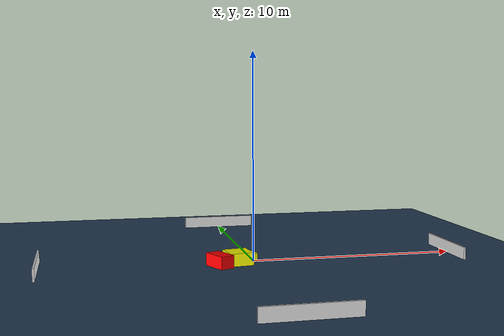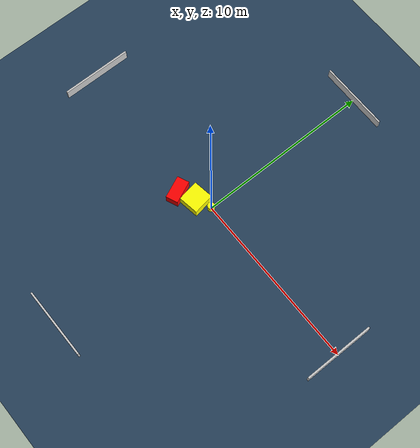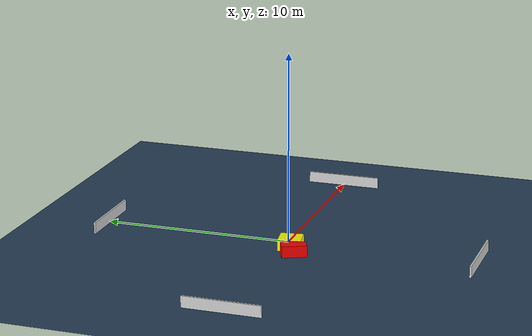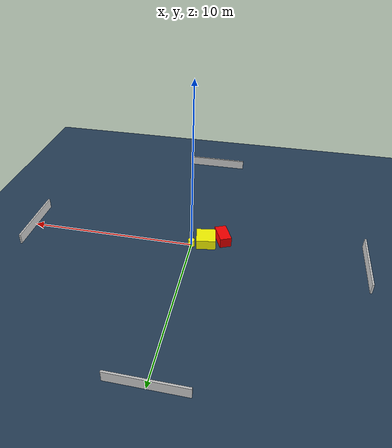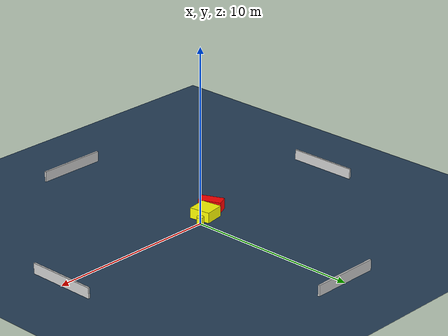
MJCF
<?xml version="1.0" ?>
<mujoco model="generated_environment">
  <option timestep="0.01" integrator="RK4" cone="elliptic"/>
  <default>
    <geom density="1"/>
  </default>
  <asset>
    <texture builtin="gradient" height="3072" name="skybox" rgb1="0.3 0.5 0.7" rgb2="0 0 0" type="skybox" width="512"/>
    <texture builtin="checker" height="300" name="groundplane" rgb1="0.2 0.3 0.4" rgb2="0.1 0.2 0.3" type="2d" width="300"/>
    <material name="groundplane" reflectance="0.2" texrepeat="5 5" texture="groundplane"/>
  </asset>
  <worldbody>
    <light dir="0 0 -1" directional="true" pos="0 0 1.5"/>
    <geom condim="3" friction="0.5 0.005 0.001" material="groundplane" name="floor" pos="0 0 0" size="0 0 0.05" type="plane"/>
    <body name="walls">
      <geom name="wall_1" condim="4" pos="-10.0 0.0 0.3" rgba="0.800000011920929 0.800000011920929 0.800000011920929 1.0" size="0.05 2.0 0.3" type="box"/>
      <geom name="wall_2" condim="4" pos="10.0 0.0 0.3" rgba="0.800000011920929 0.800000011920929 0.800000011920929 1.0" size="0.05 2.0 0.3" type="box"/>
      <geom name="wall_3" condim="4" pos="0.0 -10.0 0.3" rgba="0.800000011920929 0.800000011920929 0.800000011920929 1.0" size="2.0 0.05 0.3" type="box"/>
      <geom name="wall_4" condim="4" pos="0.0 10.0 0.3" rgba="0.800000011920929 0.800000011920929 0.800000011920929 1.0" size="2.0 0.05 0.3" type="box"/>
    </body>
    <body name="robot">
      <joint name="joint_x" type="slide" pos="0 0 0" axis="1 0 0"/>
      <joint name="joint_y" type="slide" pos="0 0 0" axis="0 1 0"/>
      <geom name="robot" type="cylinder" pos="0.0 0.0 0.2" size="0.2 0.2 0.0" mass="5.0" friction="1.0 0.005 0.0001" condim="4" rgba="1.0 1.0 0.0 1.0"/>
    </body>
    <body name="obstacle_1_movable">
      <geom name="obstacle_1_movable" condim="4" pos="-0.8048546071146696 -0.3747097967410083 0.3" euler="0 0 8.83336800174375" friction="0.0 0.005 0.001" rgba="1.0 1.0 0.0 1.0" size="0.5721032925071655 0.5995751052677611 0.3" type="box" mass="0.1"/>
      <joint type="free"/>
    </body>
    <body name="obstacle_2_static">
      <geom name="obstacle_2_static" condim="4" pos="-1.7527215989033136 -0.8429207745535731 0.3" euler="0 0 23.633080094249863" friction="0.0 0.005 0.001" rgba="1.0 0.0 0.0 1.0" size="0.3439823570458284 0.6464633633438427 0.3" type="box"/>
    </body>
  </worldbody>
  <actuator>
    <motor name="actuator_x" joint="joint_x" gear="1" ctrlrange="-1 1"/>
    <motor name="actuator_y" joint="joint_y" gear="1" ctrlrange="-1 1"/>
  </actuator>
</mujoco>
